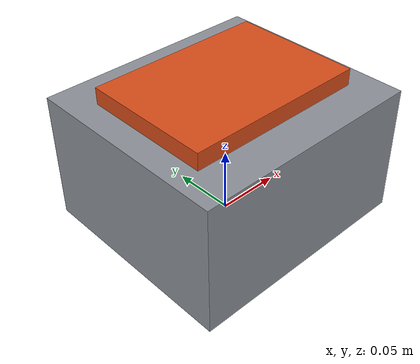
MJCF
<?xml version="1.0" encoding="utf-8"?>
<mujoco model="pouch_cell_sealer">
  <compiler angle="radian" autolimits="true"/>
  <default>
    <default class="body"><geom contype="1" conaffinity="1"/></default>
  </default>
  <worldbody>
    <body name="base">
      <geom type="box" size="0.09 0.08 0.05" pos="0 0 0.05" rgba="0.55 0.57 0.6 1" class="body"/>
      <geom type="box" size="0.027 0.004 0.0125" pos="-0.045 -0.07200000000000001 0.07500000000000001" rgba="0.9 0.7 0.1 1" class="body"/>
      <body name="heated_jaw" pos="0 0 0.105">
        <joint name="heated_jaw_joint" type="slide" axis="0 0 1" range="-0.04 0" damping="1.0" frictionloss="0.5"/>
  <geom type="box" size="0.07 0.05 0.008" pos="0 0 0" rgba="0.85 0.3 0.1 0.9" class="body"/>
      </body>
    </body>
  </worldbody>
</mujoco>
